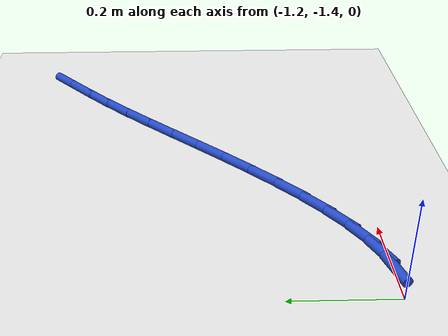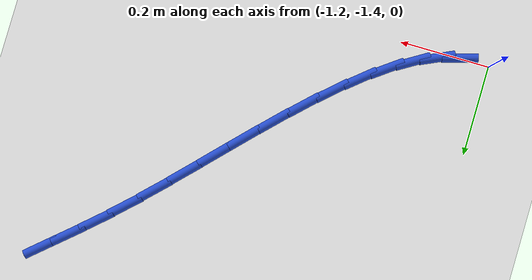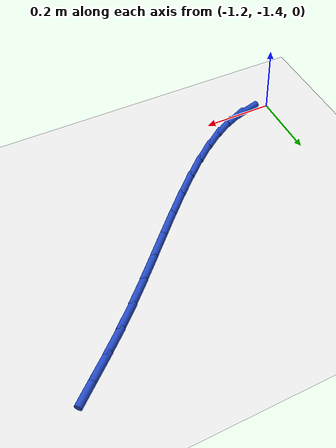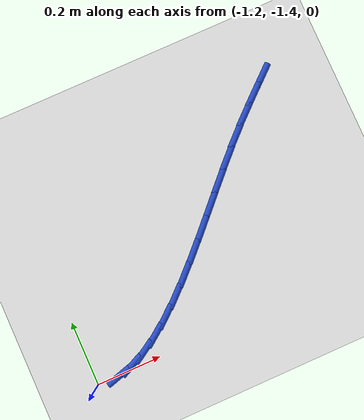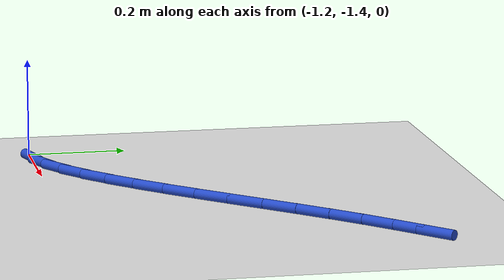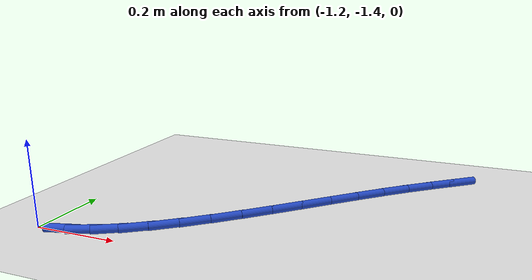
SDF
<sdf version="1.6">
 <world name="default">
  <model name="ground_plane">
   <static>1</static>
   <link name="link">
    <collision name="collision">
     <geometry><plane><normal>0 0 1</normal><size>100 100</size></plane></geometry>
     <surface><friction><ode><mu>100</mu><mu2>50</mu2></ode></friction></surface>
    </collision>
    <visual name="visual">
     <cast_shadows>0</cast_shadows>
     <geometry><plane><normal>0 0 1</normal><size>100 100</size></plane></geometry>
     <material>
      <script><uri>file://media/materials/scripts/gazebo.material</uri><name>Gazebo/WhiteGlow</name></script>
     </material>
    </visual>
   </link>
  </model>
  <model name="line">
   <link name="link_91">
    <pose>-1.1323583870298974 -1.4008942030752916 0.01 0 1.57 0.2774330958933701</pose>
    <collision name="collision">
     <geometry><cylinder><radius>0.01</radius><length>0.08</length></cylinder></geometry>
    </collision>
    <visual name="visual">
     <material>
      <script><name>Gazebo/Blue</name><uri>file://media/materials/scripts/gazebo.material</uri></script>
     </material>
     <geometry><cylinder><radius>0.01</radius><length>0.08</length></cylinder></geometry>
    </visual>
   </link>
   <link name="link_92">
    <pose>-1.0845276032005666 -1.3872730856875366 0.01 0 1.57 0.4347974112329536</pose>
    <collision name="collision">
     <geometry><cylinder><radius>0.01</radius><length>0.08</length></cylinder></geometry>
    </collision>
    <visual name="visual">
     <material>
      <script><name>Gazebo/Blue</name><uri>file://media/materials/scripts/gazebo.material</uri></script>
     </material>
     <geometry><cylinder><radius>0.01</radius><length>0.08</length></cylinder></geometry>
    </visual>
   </link>
   <link name="link_93">
    <pose>-1.0356358885909591 -1.3645658012266426 0.01 0 1.57 0.5518855821737436</pose>
    <collision name="collision">
     <geometry><cylinder><radius>0.01</radius><length>0.08</length></cylinder></geometry>
    </collision>
    <visual name="visual">
     <material>
      <script><name>Gazebo/Blue</name><uri>file://media/materials/scripts/gazebo.material</uri></script>
     </material>
     <geometry><cylinder><radius>0.01</radius><length>0.08</length></cylinder></geometry>
    </visual>
   </link>
   <link name="link_94">
    <pose>-0.9858286169526732 -1.333899335185979 0.01 0 1.57 0.6379812023766497</pose>
    <collision name="collision">
     <geometry><cylinder><radius>0.01</radius><length>0.08</length></cylinder></geometry>
    </collision>
    <visual name="visual">
     <material>
      <script><name>Gazebo/Blue</name><uri>file://media/materials/scripts/gazebo.material</uri></script>
     </material>
     <geometry><cylinder><radius>0.01</radius><length>0.08</length></cylinder></geometry>
    </visual>
   </link>
   <link name="link_95">
    <pose>-0.9352511620373057 -1.296400673058914 0.01 0 1.57 0.7008767920749708</pose>
    <collision name="collision">
     <geometry><cylinder><radius>0.01</radius><length>0.08</length></cylinder></geometry>
    </collision>
    <visual name="visual">
     <material>
      <script><name>Gazebo/Blue</name><uri>file://media/materials/scripts/gazebo.material</uri></script>
     </material>
     <geometry><cylinder><radius>0.01</radius><length>0.08</length></cylinder></geometry>
    </visual>
   </link>
   <link name="link_96">
    <pose>-0.8840488975964538 -1.2531968003388152 0.01 0 1.57 0.7462119846313146</pose>
    <collision name="collision">
     <geometry><cylinder><radius>0.01</radius><length>0.08</length></cylinder></geometry>
    </collision>
    <visual name="visual">
     <material>
      <script><name>Gazebo/Blue</name><uri>file://media/materials/scripts/gazebo.material</uri></script>
     </material>
     <geometry><cylinder><radius>0.01</radius><length>0.08</length></cylinder></geometry>
    </visual>
   </link>
   <link name="link_97">
    <pose>-0.8323671973817155 -1.205414702519052 0.01 0 1.57 0.7778202781014045</pose>
    <collision name="collision">
     <geometry><cylinder><radius>0.01</radius><length>0.08</length></cylinder></geometry>
    </collision>
    <visual name="visual">
     <material>
      <script><name>Gazebo/Blue</name><uri>file://media/materials/scripts/gazebo.material</uri></script>
     </material>
     <geometry><cylinder><radius>0.01</radius><length>0.08</length></cylinder></geometry>
    </visual>
   </link>
   <link name="link_98">
    <pose>-0.7803514351446876 -1.1541813650929924 0.01 0 1.57 0.798191668323354</pose>
    <collision name="collision">
     <geometry><cylinder><radius>0.01</radius><length>0.08</length></cylinder></geometry>
    </collision>
    <visual name="visual">
     <material>
      <script><name>Gazebo/Blue</name><uri>file://media/materials/scripts/gazebo.material</uri></script>
     </material>
     <geometry><cylinder><radius>0.01</radius><length>0.08</length></cylinder></geometry>
    </visual>
   </link>
   <link name="link_99">
    <pose>-0.7281469846369676 -1.1006237735540045 0.01 0 1.57 0.8088240980483389</pose>
    <collision name="collision">
     <geometry><cylinder><radius>0.01</radius><length>0.08</length></cylinder></geometry>
    </collision>
    <visual name="visual">
     <material>
      <script><name>Gazebo/Blue</name><uri>file://media/materials/scripts/gazebo.material</uri></script>
     </material>
     <geometry><cylinder><radius>0.01</radius><length>0.08</length></cylinder></geometry>
    </visual>
   </link>
   <link name="link_100">
    <pose>-0.6758992196101521 -1.0458689133954564 0.01 0 1.57 0.8104412227856216</pose>
    <collision name="collision">
     <geometry><cylinder><radius>0.01</radius><length>0.08</length></cylinder></geometry>
    </collision>
    <visual name="visual">
     <material>
      <script><name>Gazebo/Blue</name><uri>file://media/materials/scripts/gazebo.material</uri></script>
     </material>
     <geometry><cylinder><radius>0.01</radius><length>0.08</length></cylinder></geometry>
    </visual>
   </link>
   <link name="link_101">
    <pose>-0.6237535138158398 -0.9910437701107175 0.01 0 1.57 0.8030950596492107</pose>
    <collision name="collision">
     <geometry><cylinder><radius>0.01</radius><length>0.08</length></cylinder></geometry>
    </collision>
    <visual name="visual">
     <material>
      <script><name>Gazebo/Blue</name><uri>file://media/materials/scripts/gazebo.material</uri></script>
     </material>
     <geometry><cylinder><radius>0.01</radius><length>0.08</length></cylinder></geometry>
    </visual>
   </link>
   <link name="link_102">
    <pose>-0.5718552410056275 -0.9372753291931558 0.01 0 1.57 0.786167266107055</pose>
    <collision name="collision">
     <geometry><cylinder><radius>0.01</radius><length>0.08</length></cylinder></geometry>
    </collision>
    <visual name="visual">
     <material>
      <script><name>Gazebo/Blue</name><uri>file://media/materials/scripts/gazebo.material</uri></script>
     </material>
     <geometry><cylinder><radius>0.01</radius><length>0.08</length></cylinder></geometry>
    </visual>
   </link>
   <link name="link_103">
    <pose>-0.5203497749311125 -0.8856905761361396 0.01 0 1.57 0.7591372601253126</pose>
    <collision name="collision">
     <geometry><cylinder><radius>0.01</radius><length>0.08</length></cylinder></geometry>
    </collision>
    <visual name="visual">
     <material>
      <script><name>Gazebo/Blue</name><uri>file://media/materials/scripts/gazebo.material</uri></script>
     </material>
     <geometry><cylinder><radius>0.01</radius><length>0.08</length></cylinder></geometry>
    </visual>
   </link>
   <link name="link_104">
    <pose>-0.4693913544387456 -0.8373406813758942 0.01 0 1.57 0.7336479340987851</pose>
    <collision name="collision">
     <geometry><cylinder><radius>0.01</radius><length>0.08</length></cylinder></geometry>
    </collision>
    <visual name="visual">
     <material>
      <script><name>Gazebo/Blue</name><uri>file://media/materials/scripts/gazebo.material</uri></script>
     </material>
     <geometry><cylinder><radius>0.01</radius><length>0.08</length></cylinder></geometry>
    </visual>
   </link>
   <link name="link_105">
    <pose>-0.4192657421200556 -0.7921520129170613 0.01 0 1.57 0.7207836475255682</pose>
    <collision name="collision">
     <geometry><cylinder><radius>0.01</radius><length>0.08</length></cylinder></geometry>
    </collision>
    <visual name="visual">
     <material>
      <script><name>Gazebo/Blue</name><uri>file://media/materials/scripts/gazebo.material</uri></script>
     </material>
     <geometry><cylinder><radius>0.01</radius><length>0.08</length></cylinder></geometry>
    </visual>
   </link>
   <link name="link_106">
    <pose>-0.3703593758275561 -0.749189955233935 0.01 0 1.57 0.7224832971371155</pose>
    <collision name="collision">
     <geometry><cylinder><radius>0.01</radius><length>0.08</length></cylinder></geometry>
    </collision>
    <visual name="visual">
     <material>
      <script><name>Gazebo/Blue</name><uri>file://media/materials/scripts/gazebo.material</uri></script>
     </material>
     <geometry><cylinder><radius>0.01</radius><length>0.08</length></cylinder></geometry>
    </visual>
   </link>
  </model>
 </world>
</sdf>
